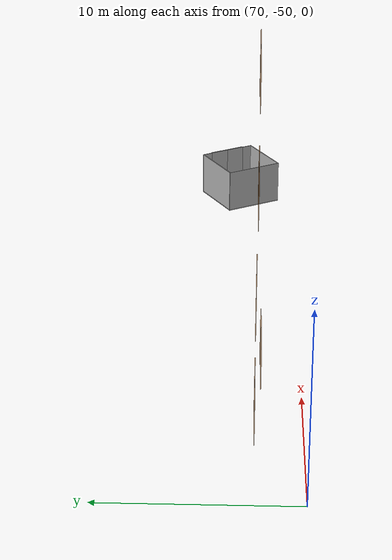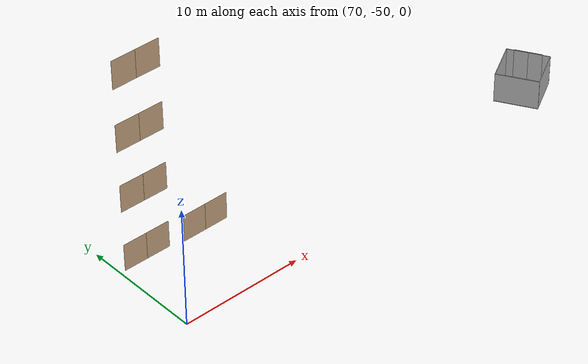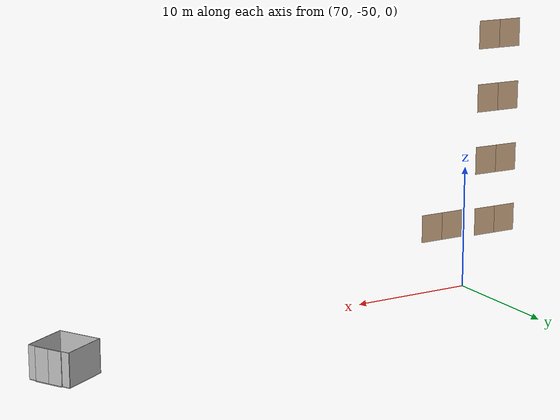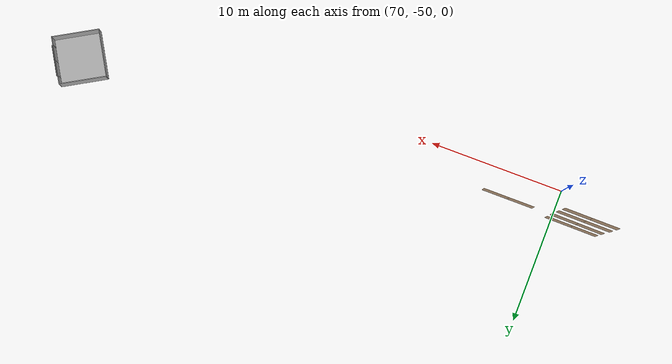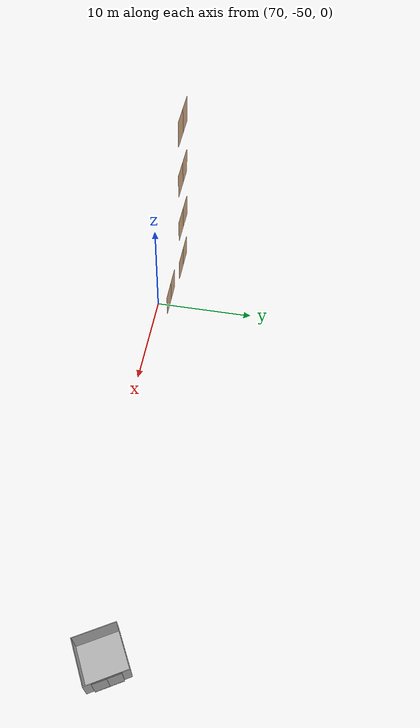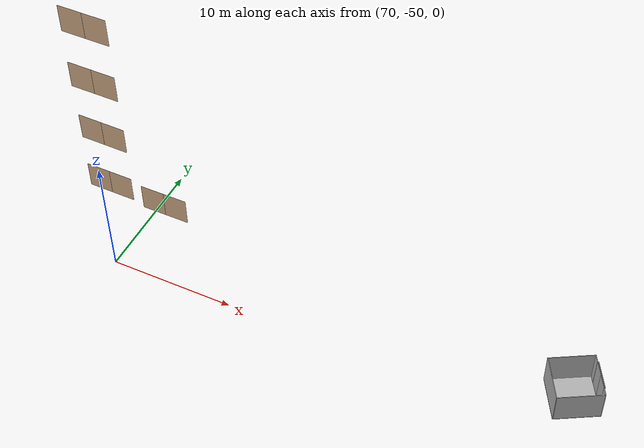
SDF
<sdf version="1.7">
 <world name="sim_world">
  <model name="puerta3153">
   <pose>68.86659574043016 -47.48928867044114 5.0 0 0 -0.00633299495050345</pose>
   <link name="right">
    <pose>0.9564102423302927 0 1.11 0 0 0</pose>
    <visual name="right_visual">
     <geometry><box><size>1.9028204846605854 0.03 2.2</size></box></geometry>
     <material>
      <ambient>0.5 0.25 0 0.6</ambient>
      <diffuse>0.5 0.25 0 0.6</diffuse>
      <pbr><metal><metalness>0.0</metalness></metal></pbr>
     </material>
    </visual>
    <collision name="right_collision">
     <geometry><box><size>1.9028204846605854 0.03 2.2</size></box></geometry>
     <surface><contact><collide_bitmask>0x02</collide_bitmask></contact></surface>
    </collision>
    <inertial>
     <mass>50.0</mass>
     <inertia><ixx>20.17041666666667</ixx><iyy>35.25302415351644</iyy><izz>15.090107486849773</izz></inertia>
    </inertial>
   </link>
   <joint name="right_joint" type="revolute">
    <parent>world</parent>
    <child>right</child>
    <axis><xyz>0 0 -1</xyz><limit><lower>0</lower><upper>1.57</upper></limit></axis>
    <pose>0.9564102423302927 0 0 0 0 0</pose>
   </joint>
   <link name="left">
    <pose>-0.9564102423302927 0 1.11 0 0 0</pose>
    <visual name="left_visual">
     <geometry><box><size>1.9028204846605854 0.03 2.2</size></box></geometry>
     <material>
      <ambient>0.5 0.25 0 0.6</ambient>
      <diffuse>0.5 0.25 0 0.6</diffuse>
      <pbr><metal><metalness>0.0</metalness></metal></pbr>
     </material>
    </visual>
    <collision name="left_collision">
     <geometry><box><size>1.9028204846605854 0.03 2.2</size></box></geometry>
     <surface><contact><collide_bitmask>0x02</collide_bitmask></contact></surface>
    </collision>
    <inertial>
     <mass>50.0</mass>
     <inertia><ixx>20.17041666666667</ixx><iyy>35.25302415351644</iyy><izz>15.090107486849773</izz></inertia>
    </inertial>
   </link>
   <joint name="left_joint" type="revolute">
    <parent>world</parent>
    <child>left</child>
    <axis><xyz>0 0 -1</xyz><limit><lower>-1.57</lower><upper>0</upper></limit></axis>
    <pose>-0.9564102423302927 0 0 0 0 0</pose>
   </joint>
   <plugin name="register_component" filename="libregister_component.so">
    <component name="Door">
     <v_max_door>0.5</v_max_door>
     <a_max_door>0.3</a_max_door>
     <a_nom_door>0.15</a_nom_door>
     <dx_min_door>0.01</dx_min_door>
     <f_max_door>500.0</f_max_door>
     <ros_interface>true</ros_interface>
     <door name="puerta3153" type="DoubleSwingDoor" left_joint_name="left_joint" right_joint_name="right_joint"/>
    </component>
   </plugin>
  </model>
  <model name="puerta3154">
   <pose>73.74120675950817 -47.786549366279274 5.0 0 0 -3.140137445378951</pose>
   <link name="right">
    <pose>0.9482659667768354 0 1.11 0 0 0</pose>
    <visual name="right_visual">
     <geometry><box><size>1.8865319335536708 0.03 2.2</size></box></geometry>
     <material>
      <ambient>0.5 0.25 0 0.6</ambient>
      <diffuse>0.5 0.25 0 0.6</diffuse>
      <pbr><metal><metalness>0.0</metalness></metal></pbr>
     </material>
    </visual>
    <collision name="right_collision">
     <geometry><box><size>1.8865319335536708 0.03 2.2</size></box></geometry>
     <surface><contact><collide_bitmask>0x02</collide_bitmask></contact></surface>
    </collision>
    <inertial>
     <mass>50.0</mass>
     <inertia><ixx>20.17041666666667</ixx><iyy>34.995844734657304</iyy><izz>14.832928067990634</izz></inertia>
    </inertial>
   </link>
   <joint name="right_joint" type="revolute">
    <parent>world</parent>
    <child>right</child>
    <axis><xyz>0 0 -1</xyz><limit><lower>0</lower><upper>1.57</upper></limit></axis>
    <pose>0.9482659667768354 0 0 0 0 0</pose>
   </joint>
   <link name="left">
    <pose>-0.9482659667768354 0 1.11 0 0 0</pose>
    <visual name="left_visual">
     <geometry><box><size>1.8865319335536708 0.03 2.2</size></box></geometry>
     <material>
      <ambient>0.5 0.25 0 0.6</ambient>
      <diffuse>0.5 0.25 0 0.6</diffuse>
      <pbr><metal><metalness>0.0</metalness></metal></pbr>
     </material>
    </visual>
    <collision name="left_collision">
     <geometry><box><size>1.8865319335536708 0.03 2.2</size></box></geometry>
     <surface><contact><collide_bitmask>0x02</collide_bitmask></contact></surface>
    </collision>
    <inertial>
     <mass>50.0</mass>
     <inertia><ixx>20.17041666666667</ixx><iyy>34.995844734657304</iyy><izz>14.832928067990634</izz></inertia>
    </inertial>
   </link>
   <joint name="left_joint" type="revolute">
    <parent>world</parent>
    <child>left</child>
    <axis><xyz>0 0 -1</xyz><limit><lower>-1.57</lower><upper>0</upper></limit></axis>
    <pose>-0.9482659667768354 0 0 0 0 0</pose>
   </joint>
   <plugin name="register_component" filename="libregister_component.so">
    <component name="Door">
     <v_max_door>0.5</v_max_door>
     <a_max_door>0.3</a_max_door>
     <a_nom_door>0.15</a_nom_door>
     <dx_min_door>0.01</dx_min_door>
     <f_max_door>500.0</f_max_door>
     <ros_interface>true</ros_interface>
     <door name="puerta3154" type="DoubleSwingDoor" left_joint_name="left_joint" right_joint_name="right_joint"/>
    </component>
   </plugin>
  </model>
  <model name="puerta5249">
   <pose>68.90207055805136 -47.47447700275427 10.0 0 0 -0.011372066082346382</pose>
   <link name="right">
    <pose>0.9617274539039353 0 1.11 0 0 0</pose>
    <visual name="right_visual">
     <geometry><box><size>1.9134549078078706 0.03 2.2</size></box></geometry>
     <material>
      <ambient>0.5 0.25 0 0.6</ambient>
      <diffuse>0.5 0.25 0 0.6</diffuse>
      <pbr><metal><metalness>0.0</metalness></metal></pbr>
     </material>
    </visual>
    <collision name="right_collision">
     <geometry><box><size>1.9134549078078706 0.03 2.2</size></box></geometry>
     <surface><contact><collide_bitmask>0x02</collide_bitmask></contact></surface>
    </collision>
    <inertial>
     <mass>50.0</mass>
     <inertia><ixx>20.17041666666667</ixx><iyy>35.42212368422512</iyy><izz>15.259207017558447</izz></inertia>
    </inertial>
   </link>
   <joint name="right_joint" type="revolute">
    <parent>world</parent>
    <child>right</child>
    <axis><xyz>0 0 -1</xyz><limit><lower>0</lower><upper>1.57</upper></limit></axis>
    <pose>0.9617274539039353 0 0 0 0 0</pose>
   </joint>
   <link name="left">
    <pose>-0.9617274539039353 0 1.11 0 0 0</pose>
    <visual name="left_visual">
     <geometry><box><size>1.9134549078078706 0.03 2.2</size></box></geometry>
     <material>
      <ambient>0.5 0.25 0 0.6</ambient>
      <diffuse>0.5 0.25 0 0.6</diffuse>
      <pbr><metal><metalness>0.0</metalness></metal></pbr>
     </material>
    </visual>
    <collision name="left_collision">
     <geometry><box><size>1.9134549078078706 0.03 2.2</size></box></geometry>
     <surface><contact><collide_bitmask>0x02</collide_bitmask></contact></surface>
    </collision>
    <inertial>
     <mass>50.0</mass>
     <inertia><ixx>20.17041666666667</ixx><iyy>35.42212368422512</iyy><izz>15.259207017558447</izz></inertia>
    </inertial>
   </link>
   <joint name="left_joint" type="revolute">
    <parent>world</parent>
    <child>left</child>
    <axis><xyz>0 0 -1</xyz><limit><lower>-1.57</lower><upper>0</upper></limit></axis>
    <pose>-0.9617274539039353 0 0 0 0 0</pose>
   </joint>
   <plugin name="register_component" filename="libregister_component.so">
    <component name="Door">
     <v_max_door>0.5</v_max_door>
     <a_max_door>0.3</a_max_door>
     <a_nom_door>0.15</a_nom_door>
     <dx_min_door>0.01</dx_min_door>
     <f_max_door>500.0</f_max_door>
     <ros_interface>true</ros_interface>
     <door name="puerta5249" type="DoubleSwingDoor" left_joint_name="left_joint" right_joint_name="right_joint"/>
    </component>
   </plugin>
  </model>
  <model name="puerta7186">
   <pose>68.85626603118055 -47.48817598358378 15.0 0 0 -0.006832110273838625</pose>
   <link name="right">
    <pose>0.9659742163930808 0 1.11 0 0 0</pose>
    <visual name="right_visual">
     <geometry><box><size>1.9219484327861616 0.03 2.2</size></box></geometry>
     <material>
      <ambient>0.5 0.25 0 0.6</ambient>
      <diffuse>0.5 0.25 0 0.6</diffuse>
      <pbr><metal><metalness>0.0</metalness></metal></pbr>
     </material>
    </visual>
    <collision name="right_collision">
     <geometry><box><size>1.9219484327861616 0.03 2.2</size></box></geometry>
     <surface><contact><collide_bitmask>0x02</collide_bitmask></contact></surface>
    </collision>
    <inertial>
     <mass>50.0</mass>
     <inertia><ixx>20.17041666666667</ixx><iyy>35.55785740953827</iyy><izz>15.394940742871597</izz></inertia>
    </inertial>
   </link>
   <joint name="right_joint" type="revolute">
    <parent>world</parent>
    <child>right</child>
    <axis><xyz>0 0 -1</xyz><limit><lower>0</lower><upper>1.57</upper></limit></axis>
    <pose>0.9659742163930808 0 0 0 0 0</pose>
   </joint>
   <link name="left">
    <pose>-0.9659742163930808 0 1.11 0 0 0</pose>
    <visual name="left_visual">
     <geometry><box><size>1.9219484327861616 0.03 2.2</size></box></geometry>
     <material>
      <ambient>0.5 0.25 0 0.6</ambient>
      <diffuse>0.5 0.25 0 0.6</diffuse>
      <pbr><metal><metalness>0.0</metalness></metal></pbr>
     </material>
    </visual>
    <collision name="left_collision">
     <geometry><box><size>1.9219484327861616 0.03 2.2</size></box></geometry>
     <surface><contact><collide_bitmask>0x02</collide_bitmask></contact></surface>
    </collision>
    <inertial>
     <mass>50.0</mass>
     <inertia><ixx>20.17041666666667</ixx><iyy>35.55785740953827</iyy><izz>15.394940742871597</izz></inertia>
    </inertial>
   </link>
   <joint name="left_joint" type="revolute">
    <parent>world</parent>
    <child>left</child>
    <axis><xyz>0 0 -1</xyz><limit><lower>-1.57</lower><upper>0</upper></limit></axis>
    <pose>-0.9659742163930808 0 0 0 0 0</pose>
   </joint>
   <plugin name="register_component" filename="libregister_component.so">
    <component name="Door">
     <v_max_door>0.5</v_max_door>
     <a_max_door>0.3</a_max_door>
     <a_nom_door>0.15</a_nom_door>
     <dx_min_door>0.01</dx_min_door>
     <f_max_door>500.0</f_max_door>
     <ros_interface>true</ros_interface>
     <door name="puerta7186" type="DoubleSwingDoor" left_joint_name="left_joint" right_joint_name="right_joint"/>
    </component>
   </plugin>
  </model>
  <model name="puerta8872">
   <pose>68.87877912377492 -47.46535149118303 20.0 0 0 -0.003510414861364799</pose>
   <link name="right">
    <pose>0.9610506756530073 0 1.11 0 0 0</pose>
    <visual name="right_visual">
     <geometry><box><size>1.9121013513060146 0.03 2.2</size></box></geometry>
     <material>
      <ambient>0.5 0.25 0 0.6</ambient>
      <diffuse>0.5 0.25 0 0.6</diffuse>
      <pbr><metal><metalness>0.0</metalness></metal></pbr>
     </material>
    </visual>
    <collision name="right_collision">
     <geometry><box><size>1.9121013513060146 0.03 2.2</size></box></geometry>
     <surface><contact><collide_bitmask>0x02</collide_bitmask></contact></surface>
    </collision>
    <inertial>
     <mass>50.0</mass>
     <inertia><ixx>20.17041666666667</ixx><iyy>35.4005482402762</iyy><izz>15.237631573609532</izz></inertia>
    </inertial>
   </link>
   <joint name="right_joint" type="revolute">
    <parent>world</parent>
    <child>right</child>
    <axis><xyz>0 0 -1</xyz><limit><lower>0</lower><upper>1.57</upper></limit></axis>
    <pose>0.9610506756530073 0 0 0 0 0</pose>
   </joint>
   <link name="left">
    <pose>-0.9610506756530073 0 1.11 0 0 0</pose>
    <visual name="left_visual">
     <geometry><box><size>1.9121013513060146 0.03 2.2</size></box></geometry>
     <material>
      <ambient>0.5 0.25 0 0.6</ambient>
      <diffuse>0.5 0.25 0 0.6</diffuse>
      <pbr><metal><metalness>0.0</metalness></metal></pbr>
     </material>
    </visual>
    <collision name="left_collision">
     <geometry><box><size>1.9121013513060146 0.03 2.2</size></box></geometry>
     <surface><contact><collide_bitmask>0x02</collide_bitmask></contact></surface>
    </collision>
    <inertial>
     <mass>50.0</mass>
     <inertia><ixx>20.17041666666667</ixx><iyy>35.4005482402762</iyy><izz>15.237631573609532</izz></inertia>
    </inertial>
   </link>
   <joint name="left_joint" type="revolute">
    <parent>world</parent>
    <child>left</child>
    <axis><xyz>0 0 -1</xyz><limit><lower>-1.57</lower><upper>0</upper></limit></axis>
    <pose>-0.9610506756530073 0 0 0 0 0</pose>
   </joint>
   <plugin name="register_component" filename="libregister_component.so">
    <component name="Door">
     <v_max_door>0.5</v_max_door>
     <a_max_door>0.3</a_max_door>
     <a_nom_door>0.15</a_nom_door>
     <dx_min_door>0.01</dx_min_door>
     <f_max_door>500.0</f_max_door>
     <ros_interface>true</ros_interface>
     <door name="puerta8872" type="DoubleSwingDoor" left_joint_name="left_joint" right_joint_name="right_joint"/>
    </component>
   </plugin>
  </model>
  <model name="ShaftDoor_lift_2_L0_name">
   <pose>107.7006136406853 -45.85575926253303 0.0 0 0 -1.05</pose>
   <link name="right_door">
    <pose>0.5625 0 1.25 0 0 0</pose>
    <visual name="right_door_visual">
     <geometry><box><size>1.125 0.03 2.5</size></box></geometry>
     <material>
      <ambient>0.5 0.5 0.5 1</ambient>
      <diffuse>0.7 0.7 0.7 1</diffuse>
      <specular>0.6 0.6 0.6 1</specular>
      <emissive>0.1 0.1 0.1 1</emissive>
     </material>
    </visual>
    <collision name="right_door_collision">
     <geometry><box><size>1.125 0.03 2.5</size></box></geometry>
     <surface><contact><collide_bitmask>0x02</collide_bitmask></contact></surface>
    </collision>
   </link>
   <link name="left_door">
    <pose>-0.5625 0 1.25 0 0 0</pose>
    <visual name="left_door_visual">
     <geometry><box><size>1.125 0.03 2.5</size></box></geometry>
     <material>
      <ambient>0.5 0.5 0.5 1</ambient>
      <diffuse>0.7 0.7 0.7 1</diffuse>
      <specular>0.6 0.6 0.6 1</specular>
      <emissive>0.1 0.1 0.1 1</emissive>
     </material>
    </visual>
    <collision name="left_door_collision">
     <geometry><box><size>1.125 0.03 2.5</size></box></geometry>
     <surface><contact><collide_bitmask>0x02</collide_bitmask></contact></surface>
    </collision>
   </link>
   <joint name="right_joint" type="prismatic">
    <parent>world</parent>
    <child>right_door</child>
    <axis><xyz>1 0 0</xyz><limit><lower>0</lower><upper>1.125</upper></limit></axis>
   </joint>
   <joint name="left_joint" type="prismatic">
    <parent>world</parent>
    <child>left_door</child>
    <axis><xyz>1 0 0</xyz><limit><lower>-1.125</lower><upper>0</upper></limit></axis>
   </joint>
   <link name="ramp">
    <pose>0 0 -0.025 0 0 0</pose>
    <visual name="ramp_visual">
     <geometry><box><size>2.25 0.1 0.05</size></box></geometry>
     <material>
      <ambient>0.5 0.5 0.5 1</ambient>
      <diffuse>0.7 0.7 0.7 1</diffuse>
      <specular>0.6 0.6 0.6 1</specular>
      <emissive>0.1 0.1 0.1 1</emissive>
     </material>
    </visual>
    <collision name="ramp_collision">
     <geometry><box><size>2.25 0.1 0.05</size></box></geometry>
     <surface><contact><collide_bitmask>0x02</collide_bitmask></contact></surface>
    </collision>
   </link>
   <joint name="ramp_joint" type="fixed"><parent>world</parent><child>ramp</child></joint>
   <plugin name="register_component" filename="libregister_component.so">
    <component name="Door">
     <v_max_door>0.3</v_max_door>
     <a_max_door>0.2</a_max_door>
     <a_nom_door>0.1</a_nom_door>
     <dx_min_door>0.0001</dx_min_door>
     <f_max_door>35.0</f_max_door>
     <door left_joint_name="left_joint" name="ShaftDoor_lift_2_L0_name" right_joint_name="right_joint" type="DoubleSlidingDoor"/>
    </component>
   </plugin>
  </model>
  <model name="lift_2">
   <link name="platform">
    <inertial><mass>1200</mass><inertia><ixx>1225.25</ixx><iyy>1225.25</iyy><izz>2450.0</izz></inertia></inertial>
    <visual name="floor_visual">
     <pose>0 0 -0.025 0 0 0</pose>
     <geometry><box><size>3.5 3.5 0.05</size></box></geometry>
     <material>
      <ambient>0.5 0.5 0.5 1</ambient>
      <diffuse>0.7 0.7 0.7 1</diffuse>
      <specular>0.6 0.6 0.6 1</specular>
      <emissive>0.1 0.1 0.1 1</emissive>
     </material>
    </visual>
    <collision name="floor_collision">
     <pose>0 0 -0.025 0 0 0</pose>
     <geometry><box><size>3.5 3.5 0.05</size></box></geometry>
     <surface><contact><collide_bitmask>0x01</collide_bitmask></contact></surface>
    </collision>
    <visual name="frontwall1_visual">
     <pose>-1.4375 1.725 1.25 0 0 0</pose>
     <geometry><box><size>0.625 0.05 2.5</size></box></geometry>
     <material>
      <ambient>0.5 0.5 0.5 1</ambient>
      <diffuse>0.7 0.7 0.7 1</diffuse>
      <specular>0.6 0.6 0.6 1</specular>
      <emissive>0.1 0.1 0.1 1</emissive>
     </material>
    </visual>
    <collision name="frontwall1_collision">
     <pose>-1.4375 1.725 1.25 0 0 0</pose>
     <geometry><box><size>0.625 0.05 2.5</size></box></geometry>
     <surface><contact><collide_bitmask>0x01</collide_bitmask></contact></surface>
    </collision>
    <visual name="frontwall2_visual">
     <pose>1.4375 1.725 1.25 0 0 0</pose>
     <geometry><box><size>0.625 0.05 2.5</size></box></geometry>
     <material>
      <ambient>0.5 0.5 0.5 1</ambient>
      <diffuse>0.7 0.7 0.7 1</diffuse>
      <specular>0.6 0.6 0.6 1</specular>
      <emissive>0.1 0.1 0.1 1</emissive>
     </material>
    </visual>
    <collision name="frontwall2_collision">
     <pose>1.4375 1.725 1.25 0 0 0</pose>
     <geometry><box><size>0.625 0.05 2.5</size></box></geometry>
     <surface><contact><collide_bitmask>0x01</collide_bitmask></contact></surface>
    </collision>
    <visual name="backwall1_visual">
     <pose>0.0 -1.725 1.25 0 0 0</pose>
     <geometry><box><size>3.5 0.05 2.5</size></box></geometry>
     <material>
      <ambient>0.5 0.5 0.5 1</ambient>
      <diffuse>0.7 0.7 0.7 1</diffuse>
      <specular>0.6 0.6 0.6 1</specular>
      <emissive>0.1 0.1 0.1 1</emissive>
     </material>
    </visual>
    <collision name="backwall1_collision">
     <pose>0.0 -1.725 1.25 0 0 0</pose>
     <geometry><box><size>3.5 0.05 2.5</size></box></geometry>
     <surface><contact><collide_bitmask>0x01</collide_bitmask></contact></surface>
    </collision>
    <visual name="leftwall1_visual">
     <pose>-1.725 0.0 1.25 0 0 1.5707963267948966</pose>
     <geometry><box><size>3.4 0.05 2.5</size></box></geometry>
     <material>
      <ambient>0.5 0.5 0.5 1</ambient>
      <diffuse>0.7 0.7 0.7 1</diffuse>
      <specular>0.6 0.6 0.6 1</specular>
      <emissive>0.1 0.1 0.1 1</emissive>
     </material>
    </visual>
    <collision name="leftwall1_collision">
     <pose>-1.725 0.0 1.25 0 0 1.5707963267948966</pose>
     <geometry><box><size>3.4 0.05 2.5</size></box></geometry>
     <surface><contact><collide_bitmask>0x01</collide_bitmask></contact></surface>
    </collision>
    <visual name="rightwall1_visual">
     <pose>1.725 0.0 1.25 0 0 1.5707963267948966</pose>
     <geometry><box><size>3.4 0.05 2.5</size></box></geometry>
     <material>
      <ambient>0.5 0.5 0.5 1</ambient>
      <diffuse>0.7 0.7 0.7 1</diffuse>
      <specular>0.6 0.6 0.6 1</specular>
      <emissive>0.1 0.1 0.1 1</emissive>
     </material>
    </visual>
    <collision name="rightwall1_collision">
     <pose>1.725 0.0 1.25 0 0 1.5707963267948966</pose>
     <geometry><box><size>3.4 0.05 2.5</size></box></geometry>
     <surface><contact><collide_bitmask>0x01</collide_bitmask></contact></surface>
    </collision>
   </link>
   <joint name="cabin_joint" type="prismatic">
    <parent>world</parent>
    <child>platform</child>
    <axis><xyz>0 0 1</xyz></axis>
   </joint>
   <model name="CabinDoor_lift_2_name">
    <pose>0.0 1.725 0 0 0 0.0</pose>
    <link name="right_door">
     <pose>0.5625 0 1.25 0 0 0</pose>
     <visual name="right_door_visual">
      <geometry><box><size>1.125 0.03 2.5</size></box></geometry>
      <material>
       <ambient>0.5 0.5 0.5 1</ambient>
       <diffuse>0.7 0.7 0.7 1</diffuse>
       <specular>0.6 0.6 0.6 1</specular>
       <emissive>0.1 0.1 0.1 1</emissive>
      </material>
     </visual>
     <collision name="right_door_collision">
      <geometry><box><size>1.125 0.03 2.5</size></box></geometry>
      <surface><contact><collide_bitmask>0x02</collide_bitmask></contact></surface>
     </collision>
    </link>
    <link name="left_door">
     <pose>-0.5625 0 1.25 0 0 0</pose>
     <visual name="left_door_visual">
      <geometry><box><size>1.125 0.03 2.5</size></box></geometry>
      <material>
       <ambient>0.5 0.5 0.5 1</ambient>
       <diffuse>0.7 0.7 0.7 1</diffuse>
       <specular>0.6 0.6 0.6 1</specular>
       <emissive>0.1 0.1 0.1 1</emissive>
      </material>
     </visual>
     <collision name="left_door_collision">
      <geometry><box><size>1.125 0.03 2.5</size></box></geometry>
      <surface><contact><collide_bitmask>0x02</collide_bitmask></contact></surface>
     </collision>
    </link>
    <plugin name="register_component" filename="libregister_component.so">
     <component name="Door">
      <v_max_door>0.3</v_max_door>
      <a_max_door>0.2</a_max_door>
      <a_nom_door>0.1</a_nom_door>
      <dx_min_door>0.0001</dx_min_door>
      <f_max_door>35.0</f_max_door>
      <door left_joint_name="CabinDoor_lift_2_name_left_joint" name="CabinDoor_lift_2_name" right_joint_name="CabinDoor_lift_2_name_right_joint" type="DoubleSlidingDoor"/>
     </component>
    </plugin>
   </model>
   <joint name="CabinDoor_lift_2_name_right_joint" type="prismatic">
    <parent>platform</parent>
    <child>CabinDoor_lift_2_name::right_door</child>
    <axis><xyz>1 0 0</xyz><limit><lower>0</lower><upper>1.125</upper></limit></axis>
   </joint>
   <joint name="CabinDoor_lift_2_name_left_joint" type="prismatic">
    <parent>platform</parent>
    <child>CabinDoor_lift_2_name::left_door</child>
    <axis><xyz>1 0 0</xyz><limit><lower>-1.125</lower><upper>0</upper></limit></axis>
   </joint>
   <plugin name="register_component" filename="libregister_component.so">
    <component name="Lift">
     <lift_name>lift_2</lift_name>
     <floor name="L0" elevation="0.0">
      <door_pair cabin_door="CabinDoor_lift_2_name" shaft_door="ShaftDoor_lift_2_L0_name"/>
     </floor>
     <floor name="L1" elevation="5.0">
      <door_pair cabin_door="CabinDoor_lift_2_name" shaft_door="ShaftDoor_lift_2_L1_name"/>
     </floor>
     <floor name="L2" elevation="10.0">
      <door_pair cabin_door="CabinDoor_lift_2_name" shaft_door="ShaftDoor_lift_2_L2_name"/>
     </floor>
     <floor name="L3" elevation="15.0">
      <door_pair cabin_door="CabinDoor_lift_2_name" shaft_door="ShaftDoor_lift_2_L3_name"/>
     </floor>
     <initial_floor>L0</initial_floor>
     <v_max_cabin>2.0</v_max_cabin>
     <a_max_cabin>1.2</a_max_cabin>
     <a_nom_cabin>1.0</a_nom_cabin>
     <dx_min_cabin>0.001</dx_min_cabin>
     <f_max_cabin>25323.0</f_max_cabin>
     <cabin_joint_name>cabin_joint</cabin_joint_name>
    </component>
   </plugin>
   <pose>106.13925183461608 -46.75138714873814 0 0 0 -1.05</pose>
  </model>
 </world>
</sdf>
